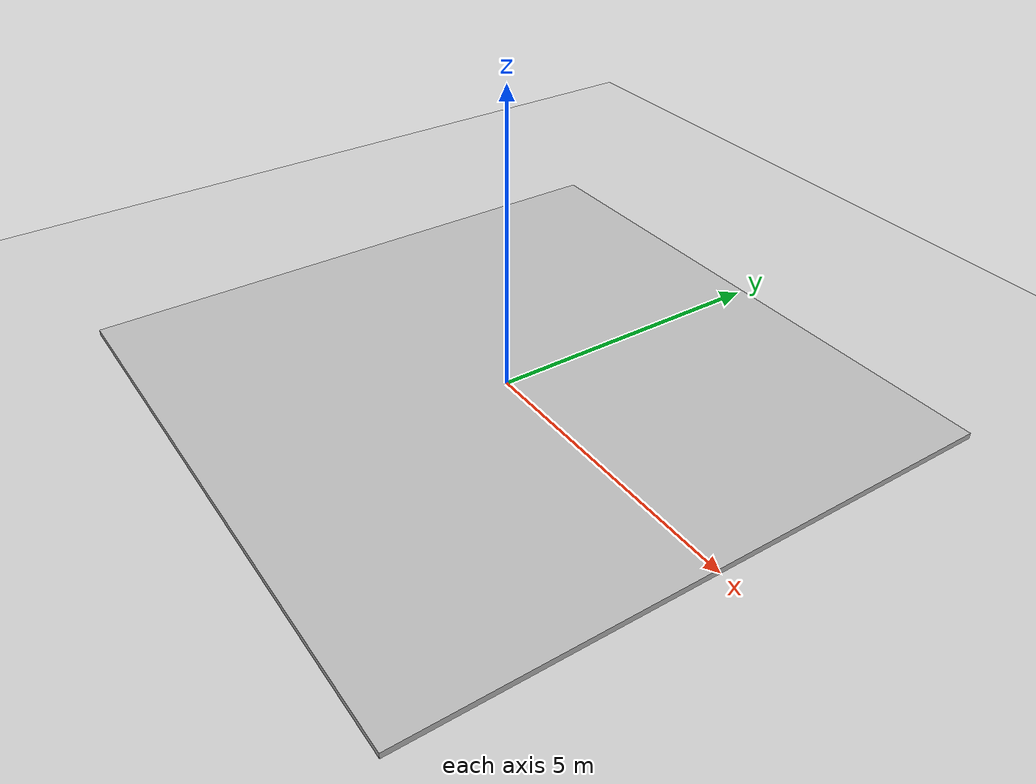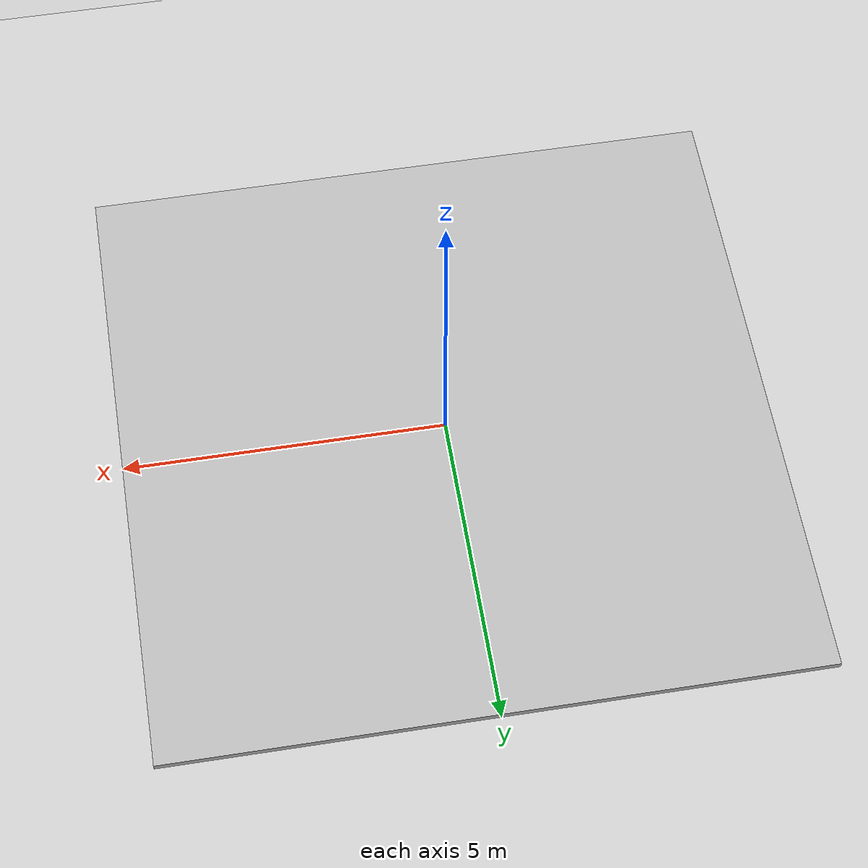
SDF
<?xml version="1.0"?>
<sdf version="1.5">
  <world name="default">

    <!-- A global light source -->
    <scene>
      <ambient>0.5 0.5 0.5 1.0</ambient>
      <shadows>true</shadows>
    </scene>

    <include>
      <uri>model://sun</uri>
    </include>

    <!-- A ground plane -->
    <include>
      <uri>model://ground_plane</uri>
    </include>

    <!-- Coordinates -->
    <spherical_coordinates>
      <surface_model>EARTH_WGS84</surface_model>
      <latitude_deg>0</latitude_deg>
      <longitude_deg>0</longitude_deg>
      <elevation>0</elevation>
      <heading_deg>0</heading_deg>
    </spherical_coordinates>

    <!-- Camera -->
    <gui fullscreen='0'>
      <camera name='user_camera'>
        <pose>7.8971 -5.86361 6.86576 0 0.507643 2.3202</pose>
        <view_controller>orbit</view_controller>
        <projection_type>perspective</projection_type>
      </camera>
    </gui>

    <!-- Floor -->
    <include>
      <name>floor</name>
      <uri>model://floor</uri>
      <pose>0 0 0.05 0 0 0</pose>
    </include>

    <!-- World god (to spawn and remove drones and models) -->
    <plugin name="UTRAFMAN_gazebo" filename="libUTRAFMAN_gazebo.so" />
  </world>
</sdf>

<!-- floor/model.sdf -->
<sdf version="1.5">

  <model name='floor'>
    <static>true</static>
    <link name='link'>
      <collision name='collisionsuelo'>
        <geometry>
          <box>
            <size>10 10 0.1</size>
          </box>
        </geometry>

        <surface>
          <friction>
            <ode>
              <mu>100.0</mu>
              <mu2>50.0</mu2>
              <slip1>0.0</slip1>
              <slip2>0.0</slip2>
            </ode>
          </friction>
        </surface>

      </collision>

      <visual name='visualsuelo'>
        <geometry>
          <box>
            <size>10 10 0.1</size>
          </box>
        </geometry>
        <material>
          <script>

            <uri>model://DC/floor/scripts</uri>
            <uri>model://DC/floor/materials</uri>
            <name>floorMat/Diffuse</name>
          </script>
        </material>
      </visual>
      <self_collide>0</self_collide>
      <kinematic>0</kinematic>
      <gravity>1</gravity>
    </link>
  </model>

</sdf>
